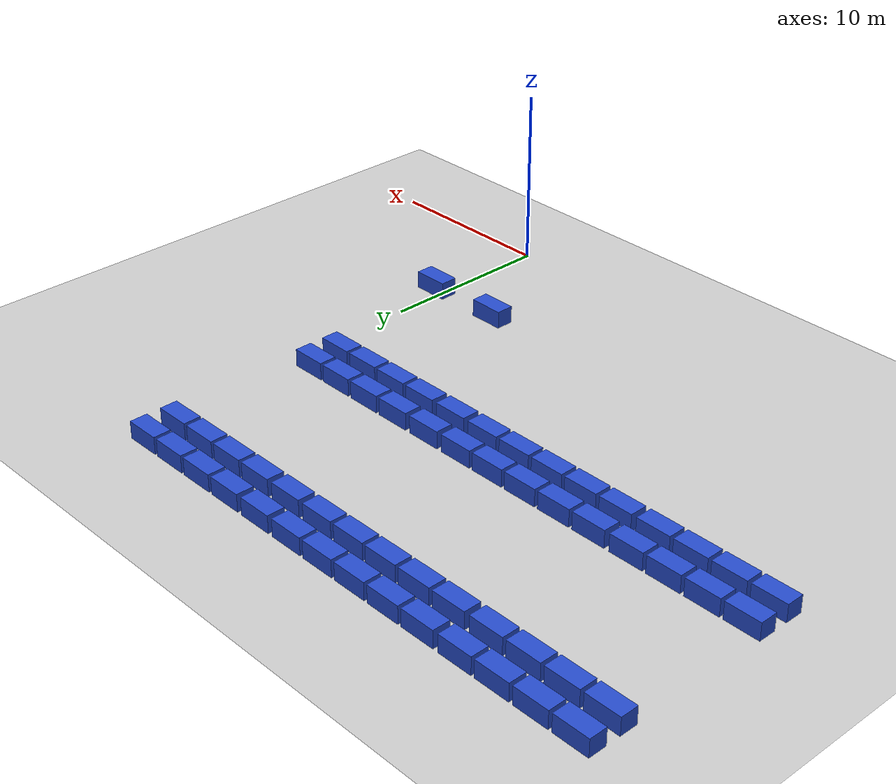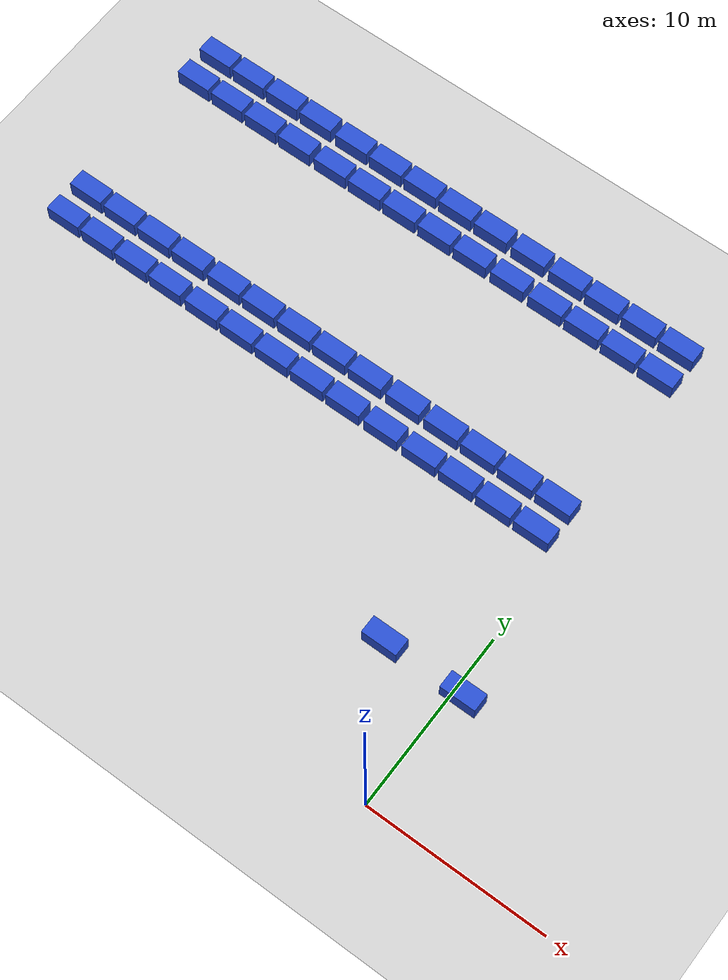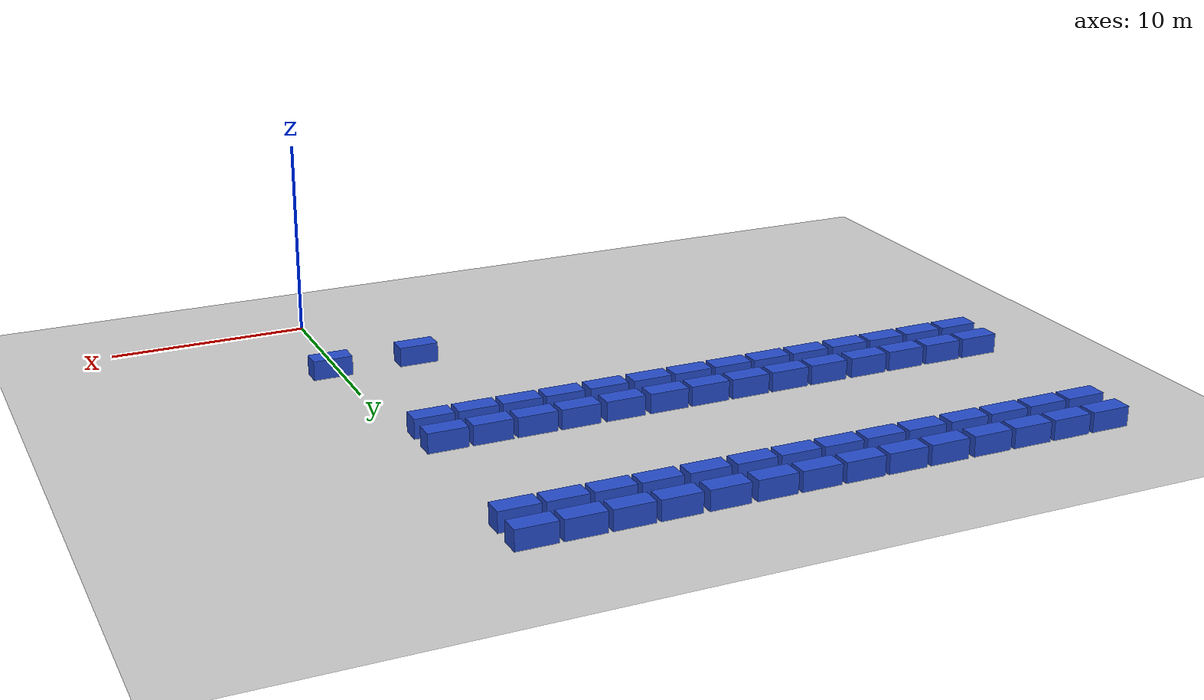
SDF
<sdf version="1.6">
 <world name="default">
  <model name="ground_plane">
   <static>1</static>
   <link name="link">
    <collision name="collision">
     <geometry><plane><normal>0 0 1</normal><size>100 100</size></plane></geometry>
     <surface><friction><ode><mu>100</mu><mu2>50</mu2></ode></friction></surface>
    </collision>
    <visual name="visual">
     <cast_shadows>0</cast_shadows>
     <geometry><plane><normal>0 0 1</normal><size>100 100</size></plane></geometry>
     <material>
      <script><uri>file://media/materials/scripts/gazebo.material</uri><name>Gazebo/Grey</name></script>
     </material>
    </visual>
   </link>
  </model>
  <model name="box0">
   <link name="blue_box">
    <inertial>
     <pose>2 0 0 0 -0 0</pose>
     <mass>1</mass>
     <inertia><ixx>0.17</ixx><ixy>0</ixy><ixz>0</ixz><iyy>0.42</iyy><iyz>0</iyz><izz>0.42</izz></inertia>
    </inertial>
    <collision name="blue_box_collision">
     <pose>2 0 1 0 -0 0</pose>
     <geometry><box><size>2 1 1</size></box></geometry>
    </collision>
    <visual name="blue_box_visual">
     <pose>2 0 1 0 -0 0</pose>
     <geometry><box><size>2 1 1</size></box></geometry>
     <material>
      <script><name>Gazebo/Blue</name><uri>file://media/materials/scripts/gazebo.material</uri></script>
     </material>
    </visual>
    <gravity>0</gravity>
   </link>
   <pose>-32.4 27.7996 -0.500378 -0.000755 0 0</pose>
  </model>
  <model name="box1">
   <link name="blue_box">
    <inertial>
     <pose>2 0 0 0 -0 0</pose>
     <mass>1</mass>
     <inertia><ixx>0.17</ixx><ixy>0</ixy><ixz>0</ixz><iyy>0.42</iyy><iyz>0</iyz><izz>0.42</izz></inertia>
    </inertial>
    <collision name="blue_box_collision">
     <pose>2 0 1 0 -0 0</pose>
     <geometry><box><size>2 1 1</size></box></geometry>
    </collision>
    <visual name="blue_box_visual">
     <pose>2 0 1 0 -0 0</pose>
     <geometry><box><size>2 1 1</size></box></geometry>
     <material>
      <script><name>Gazebo/Blue</name><uri>file://media/materials/scripts/gazebo.material</uri></script>
     </material>
    </visual>
    <gravity>0</gravity>
   </link>
   <pose>-30.2 27.7996 -0.500378 -0.000755 0 0</pose>
  </model>
  <model name="box2">
   <link name="blue_box">
    <inertial>
     <pose>2 0 0 0 -0 0</pose>
     <mass>1</mass>
     <inertia><ixx>0.17</ixx><ixy>0</ixy><ixz>0</ixz><iyy>0.42</iyy><iyz>0</iyz><izz>0.42</izz></inertia>
    </inertial>
    <collision name="blue_box_collision">
     <pose>2 0 1 0 -0 0</pose>
     <geometry><box><size>2 1 1</size></box></geometry>
    </collision>
    <visual name="blue_box_visual">
     <pose>2 0 1 0 -0 0</pose>
     <geometry><box><size>2 1 1</size></box></geometry>
     <material>
      <script><name>Gazebo/Blue</name><uri>file://media/materials/scripts/gazebo.material</uri></script>
     </material>
    </visual>
    <gravity>0</gravity>
   </link>
   <pose>-28 27.7996 -0.500378 -0.000755 0 0</pose>
  </model>
  <model name="box3">
   <link name="blue_box">
    <inertial>
     <pose>2 0 0 0 -0 0</pose>
     <mass>1</mass>
     <inertia><ixx>0.17</ixx><ixy>0</ixy><ixz>0</ixz><iyy>0.42</iyy><iyz>0</iyz><izz>0.42</izz></inertia>
    </inertial>
    <collision name="blue_box_collision">
     <pose>2 0 1 0 -0 0</pose>
     <geometry><box><size>2 1 1</size></box></geometry>
    </collision>
    <visual name="blue_box_visual">
     <pose>2 0 1 0 -0 0</pose>
     <geometry><box><size>2 1 1</size></box></geometry>
     <material>
      <script><name>Gazebo/Blue</name><uri>file://media/materials/scripts/gazebo.material</uri></script>
     </material>
    </visual>
    <gravity>0</gravity>
   </link>
   <pose>-25.8 27.7996 -0.500378 -0.000755 0 0</pose>
  </model>
  <model name="box4">
   <link name="blue_box">
    <inertial>
     <pose>2 0 0 0 -0 0</pose>
     <mass>1</mass>
     <inertia><ixx>0.17</ixx><ixy>0</ixy><ixz>0</ixz><iyy>0.42</iyy><iyz>0</iyz><izz>0.42</izz></inertia>
    </inertial>
    <collision name="blue_box_collision">
     <pose>2 0 1 0 -0 0</pose>
     <geometry><box><size>2 1 1</size></box></geometry>
    </collision>
    <visual name="blue_box_visual">
     <pose>2 0 1 0 -0 0</pose>
     <geometry><box><size>2 1 1</size></box></geometry>
     <material>
      <script><name>Gazebo/Blue</name><uri>file://media/materials/scripts/gazebo.material</uri></script>
     </material>
    </visual>
    <gravity>0</gravity>
   </link>
   <pose>-23.5 27.7996 -0.500378 -0.000755 0 0</pose>
  </model>
  <model name="box5">
   <link name="blue_box">
    <inertial>
     <pose>2 0 0 0 -0 0</pose>
     <mass>1</mass>
     <inertia><ixx>0.17</ixx><ixy>0</ixy><ixz>0</ixz><iyy>0.42</iyy><iyz>0</iyz><izz>0.42</izz></inertia>
    </inertial>
    <collision name="blue_box_collision">
     <pose>2 0 1 0 -0 0</pose>
     <geometry><box><size>2 1 1</size></box></geometry>
    </collision>
    <visual name="blue_box_visual">
     <pose>2 0 1 0 -0 0</pose>
     <geometry><box><size>2 1 1</size></box></geometry>
     <material>
      <script><name>Gazebo/Blue</name><uri>file://media/materials/scripts/gazebo.material</uri></script>
     </material>
    </visual>
    <gravity>0</gravity>
   </link>
   <pose>-21.3 27.7996 -0.500378 -0.000755 0 0</pose>
  </model>
  <model name="box6">
   <link name="blue_box">
    <inertial>
     <pose>2 0 0 0 -0 0</pose>
     <mass>1</mass>
     <inertia><ixx>0.17</ixx><ixy>0</ixy><ixz>0</ixz><iyy>0.42</iyy><iyz>0</iyz><izz>0.42</izz></inertia>
    </inertial>
    <collision name="blue_box_collision">
     <pose>2 0 1 0 -0 0</pose>
     <geometry><box><size>2 1 1</size></box></geometry>
    </collision>
    <visual name="blue_box_visual">
     <pose>2 0 1 0 -0 0</pose>
     <geometry><box><size>2 1 1</size></box></geometry>
     <material>
      <script><name>Gazebo/Blue</name><uri>file://media/materials/scripts/gazebo.material</uri></script>
     </material>
    </visual>
    <gravity>0</gravity>
   </link>
   <pose>-19.1 27.7996 -0.500378 -0.000755 0 0</pose>
  </model>
  <model name="box7">
   <link name="blue_box">
    <inertial>
     <pose>2 0 0 0 -0 0</pose>
     <mass>1</mass>
     <inertia><ixx>0.17</ixx><ixy>0</ixy><ixz>0</ixz><iyy>0.42</iyy><iyz>0</iyz><izz>0.42</izz></inertia>
    </inertial>
    <collision name="blue_box_collision">
     <pose>2 0 1 0 -0 0</pose>
     <geometry><box><size>2 1 1</size></box></geometry>
    </collision>
    <visual name="blue_box_visual">
     <pose>2 0 1 0 -0 0</pose>
     <geometry><box><size>2 1 1</size></box></geometry>
     <material>
      <script><name>Gazebo/Blue</name><uri>file://media/materials/scripts/gazebo.material</uri></script>
     </material>
    </visual>
    <gravity>0</gravity>
   </link>
   <pose>-16.9 27.7996 -0.500378 -0.000755 0 0</pose>
  </model>
  <model name="box8">
   <link name="blue_box">
    <inertial>
     <pose>2 0 0 0 -0 0</pose>
     <mass>1</mass>
     <inertia><ixx>0.17</ixx><ixy>0</ixy><ixz>0</ixz><iyy>0.42</iyy><iyz>0</iyz><izz>0.42</izz></inertia>
    </inertial>
    <collision name="blue_box_collision">
     <pose>2 0 1 0 -0 0</pose>
     <geometry><box><size>2 1 1</size></box></geometry>
    </collision>
    <visual name="blue_box_visual">
     <pose>2 0 1 0 -0 0</pose>
     <geometry><box><size>2 1 1</size></box></geometry>
     <material>
      <script><name>Gazebo/Blue</name><uri>file://media/materials/scripts/gazebo.material</uri></script>
     </material>
    </visual>
    <gravity>0</gravity>
   </link>
   <pose>-14.7 27.7996 -0.500378 -0.000755 0 0</pose>
  </model>
  <model name="box9">
   <link name="blue_box">
    <inertial>
     <pose>2 0 0 0 -0 0</pose>
     <mass>1</mass>
     <inertia><ixx>0.17</ixx><ixy>0</ixy><ixz>0</ixz><iyy>0.42</iyy><iyz>0</iyz><izz>0.42</izz></inertia>
    </inertial>
    <collision name="blue_box_collision">
     <pose>2 0 1 0 -0 0</pose>
     <geometry><box><size>2 1 1</size></box></geometry>
    </collision>
    <visual name="blue_box_visual">
     <pose>2 0 1 0 -0 0</pose>
     <geometry><box><size>2 1 1</size></box></geometry>
     <material>
      <script><name>Gazebo/Blue</name><uri>file://media/materials/scripts/gazebo.material</uri></script>
     </material>
    </visual>
    <gravity>0</gravity>
   </link>
   <pose>-12.4 27.7996 -0.500378 -0.000755 0 0</pose>
  </model>
  <model name="box10">
   <link name="blue_box">
    <inertial>
     <pose>2 0 0 0 -0 0</pose>
     <mass>1</mass>
     <inertia><ixx>0.17</ixx><ixy>0</ixy><ixz>0</ixz><iyy>0.42</iyy><iyz>0</iyz><izz>0.42</izz></inertia>
    </inertial>
    <collision name="blue_box_collision">
     <pose>2 0 1 0 -0 0</pose>
     <geometry><box><size>2 1 1</size></box></geometry>
    </collision>
    <visual name="blue_box_visual">
     <pose>2 0 1 0 -0 0</pose>
     <geometry><box><size>2 1 1</size></box></geometry>
     <material>
      <script><name>Gazebo/Blue</name><uri>file://media/materials/scripts/gazebo.material</uri></script>
     </material>
    </visual>
    <gravity>0</gravity>
   </link>
   <pose>-10.1 27.7996 -0.500378 -0.000755 0 0</pose>
  </model>
  <model name="box11">
   <link name="blue_box">
    <inertial>
     <pose>2 0 0 0 -0 0</pose>
     <mass>1</mass>
     <inertia><ixx>0.17</ixx><ixy>0</ixy><ixz>0</ixz><iyy>0.42</iyy><iyz>0</iyz><izz>0.42</izz></inertia>
    </inertial>
    <collision name="blue_box_collision">
     <pose>2 0 1 0 -0 0</pose>
     <geometry><box><size>2 1 1</size></box></geometry>
    </collision>
    <visual name="blue_box_visual">
     <pose>2 0 1 0 -0 0</pose>
     <geometry><box><size>2 1 1</size></box></geometry>
     <material>
      <script><name>Gazebo/Blue</name><uri>file://media/materials/scripts/gazebo.material</uri></script>
     </material>
    </visual>
    <gravity>0</gravity>
   </link>
   <pose>-7.89999 27.7996 -0.500378 -0.000755 0 0</pose>
  </model>
  <model name="box12">
   <link name="blue_box">
    <inertial>
     <pose>2 0 0 0 -0 0</pose>
     <mass>1</mass>
     <inertia><ixx>0.17</ixx><ixy>0</ixy><ixz>0</ixz><iyy>0.42</iyy><iyz>0</iyz><izz>0.42</izz></inertia>
    </inertial>
    <collision name="blue_box_collision">
     <pose>2 0 1 0 -0 0</pose>
     <geometry><box><size>2 1 1</size></box></geometry>
    </collision>
    <visual name="blue_box_visual">
     <pose>2 0 1 0 -0 0</pose>
     <geometry><box><size>2 1 1</size></box></geometry>
     <material>
      <script><name>Gazebo/Blue</name><uri>file://media/materials/scripts/gazebo.material</uri></script>
     </material>
    </visual>
    <gravity>0</gravity>
   </link>
   <pose>-5.70001 27.7996 -0.500378 -0.000755 0 0</pose>
  </model>
  <model name="box13">
   <link name="blue_box">
    <inertial>
     <pose>2 0 0 0 -0 0</pose>
     <mass>1</mass>
     <inertia><ixx>0.17</ixx><ixy>0</ixy><ixz>0</ixz><iyy>0.42</iyy><iyz>0</iyz><izz>0.42</izz></inertia>
    </inertial>
    <collision name="blue_box_collision">
     <pose>2 0 1 0 -0 0</pose>
     <geometry><box><size>2 1 1</size></box></geometry>
    </collision>
    <visual name="blue_box_visual">
     <pose>2 0 1 0 -0 0</pose>
     <geometry><box><size>2 1 1</size></box></geometry>
     <material>
      <script><name>Gazebo/Blue</name><uri>file://media/materials/scripts/gazebo.material</uri></script>
     </material>
    </visual>
    <gravity>0</gravity>
   </link>
   <pose>-3.49999 27.7996 -0.500378 -0.000755 0 0</pose>
  </model>
  <model name="box29">
   <link name="blue_box">
    <inertial>
     <pose>2 0 0 0 -0 0</pose>
     <mass>1</mass>
     <inertia><ixx>0.17</ixx><ixy>0</ixy><ixz>0</ixz><iyy>0.42</iyy><iyz>0</iyz><izz>0.42</izz></inertia>
    </inertial>
    <collision name="blue_box_collision">
     <pose>2 0 1 0 -0 0</pose>
     <geometry><box><size>2 1 1</size></box></geometry>
    </collision>
    <visual name="blue_box_visual">
     <pose>2 0 1 0 -0 0</pose>
     <geometry><box><size>2 1 1</size></box></geometry>
     <material>
      <script><name>Gazebo/Blue</name><uri>file://media/materials/scripts/gazebo.material</uri></script>
     </material>
    </visual>
    <gravity>0</gravity>
   </link>
   <pose>-32.4 25.9996 -0.500378 -0.000755 0 0</pose>
  </model>
  <model name="box30">
   <link name="blue_box">
    <inertial>
     <pose>2 0 0 0 -0 0</pose>
     <mass>1</mass>
     <inertia><ixx>0.17</ixx><ixy>0</ixy><ixz>0</ixz><iyy>0.42</iyy><iyz>0</iyz><izz>0.42</izz></inertia>
    </inertial>
    <collision name="blue_box_collision">
     <pose>2 0 1 0 -0 0</pose>
     <geometry><box><size>2 1 1</size></box></geometry>
    </collision>
    <visual name="blue_box_visual">
     <pose>2 0 1 0 -0 0</pose>
     <geometry><box><size>2 1 1</size></box></geometry>
     <material>
      <script><name>Gazebo/Blue</name><uri>file://media/materials/scripts/gazebo.material</uri></script>
     </material>
    </visual>
    <gravity>0</gravity>
   </link>
   <pose>-30.2 26.0004 -0.500378 0.000755 -0 0</pose>
  </model>
  <model name="box31">
   <link name="blue_box">
    <inertial>
     <pose>2 0 0 0 -0 0</pose>
     <mass>1</mass>
     <inertia><ixx>0.17</ixx><ixy>0</ixy><ixz>0</ixz><iyy>0.42</iyy><iyz>0</iyz><izz>0.42</izz></inertia>
    </inertial>
    <collision name="blue_box_collision">
     <pose>2 0 1 0 -0 0</pose>
     <geometry><box><size>2 1 1</size></box></geometry>
    </collision>
    <visual name="blue_box_visual">
     <pose>2 0 1 0 -0 0</pose>
     <geometry><box><size>2 1 1</size></box></geometry>
     <material>
      <script><name>Gazebo/Blue</name><uri>file://media/materials/scripts/gazebo.material</uri></script>
     </material>
    </visual>
    <gravity>0</gravity>
   </link>
   <pose>-28 25.9996 -0.500378 -0.000755 0 0</pose>
  </model>
  <model name="box32">
   <link name="blue_box">
    <inertial>
     <pose>2 0 0 0 -0 0</pose>
     <mass>1</mass>
     <inertia><ixx>0.17</ixx><ixy>0</ixy><ixz>0</ixz><iyy>0.42</iyy><iyz>0</iyz><izz>0.42</izz></inertia>
    </inertial>
    <collision name="blue_box_collision">
     <pose>2 0 1 0 -0 0</pose>
     <geometry><box><size>2 1 1</size></box></geometry>
    </collision>
    <visual name="blue_box_visual">
     <pose>2 0 1 0 -0 0</pose>
     <geometry><box><size>2 1 1</size></box></geometry>
     <material>
      <script><name>Gazebo/Blue</name><uri>file://media/materials/scripts/gazebo.material</uri></script>
     </material>
    </visual>
    <gravity>0</gravity>
   </link>
   <pose>-25.8 25.9996 -0.500378 -0.000755 0 0</pose>
  </model>
  <model name="box33">
   <link name="blue_box">
    <inertial>
     <pose>2 0 0 0 -0 0</pose>
     <mass>1</mass>
     <inertia><ixx>0.17</ixx><ixy>0</ixy><ixz>0</ixz><iyy>0.42</iyy><iyz>0</iyz><izz>0.42</izz></inertia>
    </inertial>
    <collision name="blue_box_collision">
     <pose>2 0 1 0 -0 0</pose>
     <geometry><box><size>2 1 1</size></box></geometry>
    </collision>
    <visual name="blue_box_visual">
     <pose>2 0 1 0 -0 0</pose>
     <geometry><box><size>2 1 1</size></box></geometry>
     <material>
      <script><name>Gazebo/Blue</name><uri>file://media/materials/scripts/gazebo.material</uri></script>
     </material>
    </visual>
    <gravity>0</gravity>
   </link>
   <pose>-23.5 26.0004 -0.500378 0.000755 -0 0</pose>
  </model>
  <model name="box34">
   <link name="blue_box">
    <inertial>
     <pose>2 0 0 0 -0 0</pose>
     <mass>1</mass>
     <inertia><ixx>0.17</ixx><ixy>0</ixy><ixz>0</ixz><iyy>0.42</iyy><iyz>0</iyz><izz>0.42</izz></inertia>
    </inertial>
    <collision name="blue_box_collision">
     <pose>2 0 1 0 -0 0</pose>
     <geometry><box><size>2 1 1</size></box></geometry>
    </collision>
    <visual name="blue_box_visual">
     <pose>2 0 1 0 -0 0</pose>
     <geometry><box><size>2 1 1</size></box></geometry>
     <material>
      <script><name>Gazebo/Blue</name><uri>file://media/materials/scripts/gazebo.material</uri></script>
     </material>
    </visual>
    <gravity>0</gravity>
   </link>
   <pose>-21.3 26.0004 -0.500378 0.000755 -0 0</pose>
  </model>
  <model name="box35">
   <link name="blue_box">
    <inertial>
     <pose>2 0 0 0 -0 0</pose>
     <mass>1</mass>
     <inertia><ixx>0.17</ixx><ixy>0</ixy><ixz>0</ixz><iyy>0.42</iyy><iyz>0</iyz><izz>0.42</izz></inertia>
    </inertial>
    <collision name="blue_box_collision">
     <pose>2 0 1 0 -0 0</pose>
     <geometry><box><size>2 1 1</size></box></geometry>
    </collision>
    <visual name="blue_box_visual">
     <pose>2 0 1 0 -0 0</pose>
     <geometry><box><size>2 1 1</size></box></geometry>
     <material>
      <script><name>Gazebo/Blue</name><uri>file://media/materials/scripts/gazebo.material</uri></script>
     </material>
    </visual>
    <gravity>0</gravity>
   </link>
   <pose>-19.1 25.9996 -0.500378 -0.000755 0 0</pose>
  </model>
  <model name="box36">
   <link name="blue_box">
    <inertial>
     <pose>2 0 0 0 -0 0</pose>
     <mass>1</mass>
     <inertia><ixx>0.17</ixx><ixy>0</ixy><ixz>0</ixz><iyy>0.42</iyy><iyz>0</iyz><izz>0.42</izz></inertia>
    </inertial>
    <collision name="blue_box_collision">
     <pose>2 0 1 0 -0 0</pose>
     <geometry><box><size>2 1 1</size></box></geometry>
    </collision>
    <visual name="blue_box_visual">
     <pose>2 0 1 0 -0 0</pose>
     <geometry><box><size>2 1 1</size></box></geometry>
     <material>
      <script><name>Gazebo/Blue</name><uri>file://media/materials/scripts/gazebo.material</uri></script>
     </material>
    </visual>
    <gravity>0</gravity>
   </link>
   <pose>-16.9 25.9996 -0.500378 -0.000755 0 0</pose>
  </model>
  <model name="box37">
   <link name="blue_box">
    <inertial>
     <pose>2 0 0 0 -0 0</pose>
     <mass>1</mass>
     <inertia><ixx>0.17</ixx><ixy>0</ixy><ixz>0</ixz><iyy>0.42</iyy><iyz>0</iyz><izz>0.42</izz></inertia>
    </inertial>
    <collision name="blue_box_collision">
     <pose>2 0 1 0 -0 0</pose>
     <geometry><box><size>2 1 1</size></box></geometry>
    </collision>
    <visual name="blue_box_visual">
     <pose>2 0 1 0 -0 0</pose>
     <geometry><box><size>2 1 1</size></box></geometry>
     <material>
      <script><name>Gazebo/Blue</name><uri>file://media/materials/scripts/gazebo.material</uri></script>
     </material>
    </visual>
    <gravity>0</gravity>
   </link>
   <pose>-14.7 25.9996 -0.500378 -0.000755 0 0</pose>
  </model>
  <model name="box38">
   <link name="blue_box">
    <inertial>
     <pose>2 0 0 0 -0 0</pose>
     <mass>1</mass>
     <inertia><ixx>0.17</ixx><ixy>0</ixy><ixz>0</ixz><iyy>0.42</iyy><iyz>0</iyz><izz>0.42</izz></inertia>
    </inertial>
    <collision name="blue_box_collision">
     <pose>2 0 1 0 -0 0</pose>
     <geometry><box><size>2 1 1</size></box></geometry>
    </collision>
    <visual name="blue_box_visual">
     <pose>2 0 1 0 -0 0</pose>
     <geometry><box><size>2 1 1</size></box></geometry>
     <material>
      <script><name>Gazebo/Blue</name><uri>file://media/materials/scripts/gazebo.material</uri></script>
     </material>
    </visual>
    <gravity>0</gravity>
   </link>
   <pose>-12.4 25.9996 -0.500378 -0.000755 0 0</pose>
  </model>
  <model name="box39">
   <link name="blue_box">
    <inertial>
     <pose>2 0 0 0 -0 0</pose>
     <mass>1</mass>
     <inertia><ixx>0.17</ixx><ixy>0</ixy><ixz>0</ixz><iyy>0.42</iyy><iyz>0</iyz><izz>0.42</izz></inertia>
    </inertial>
    <collision name="blue_box_collision">
     <pose>2 0 1 0 -0 0</pose>
     <geometry><box><size>2 1 1</size></box></geometry>
    </collision>
    <visual name="blue_box_visual">
     <pose>2 0 1 0 -0 0</pose>
     <geometry><box><size>2 1 1</size></box></geometry>
     <material>
      <script><name>Gazebo/Blue</name><uri>file://media/materials/scripts/gazebo.material</uri></script>
     </material>
    </visual>
    <gravity>0</gravity>
   </link>
   <pose>-10.1 25.9996 -0.500378 -0.000755 0 0</pose>
  </model>
  <model name="box40">
   <link name="blue_box">
    <inertial>
     <pose>2 0 0 0 -0 0</pose>
     <mass>1</mass>
     <inertia><ixx>0.17</ixx><ixy>0</ixy><ixz>0</ixz><iyy>0.42</iyy><iyz>0</iyz><izz>0.42</izz></inertia>
    </inertial>
    <collision name="blue_box_collision">
     <pose>2 0 1 0 -0 0</pose>
     <geometry><box><size>2 1 1</size></box></geometry>
    </collision>
    <visual name="blue_box_visual">
     <pose>2 0 1 0 -0 0</pose>
     <geometry><box><size>2 1 1</size></box></geometry>
     <material>
      <script><name>Gazebo/Blue</name><uri>file://media/materials/scripts/gazebo.material</uri></script>
     </material>
    </visual>
    <gravity>0</gravity>
   </link>
   <pose>-7.90001 25.9996 -0.500378 -0.000755 0 0</pose>
  </model>
  <model name="box41">
   <link name="blue_box">
    <inertial>
     <pose>2 0 0 0 -0 0</pose>
     <mass>1</mass>
     <inertia><ixx>0.17</ixx><ixy>0</ixy><ixz>0</ixz><iyy>0.42</iyy><iyz>0</iyz><izz>0.42</izz></inertia>
    </inertial>
    <collision name="blue_box_collision">
     <pose>2 0 1 0 -0 0</pose>
     <geometry><box><size>2 1 1</size></box></geometry>
    </collision>
    <visual name="blue_box_visual">
     <pose>2 0 1 0 -0 0</pose>
     <geometry><box><size>2 1 1</size></box></geometry>
     <material>
      <script><name>Gazebo/Blue</name><uri>file://media/materials/scripts/gazebo.material</uri></script>
     </material>
    </visual>
    <gravity>0</gravity>
   </link>
   <pose>-5.69999 25.9996 -0.500378 -0.000755 0 0</pose>
  </model>
  <model name="box42">
   <link name="blue_box">
    <inertial>
     <pose>2 0 0 0 -0 0</pose>
     <mass>1</mass>
     <inertia><ixx>0.17</ixx><ixy>0</ixy><ixz>0</ixz><iyy>0.42</iyy><iyz>0</iyz><izz>0.42</izz></inertia>
    </inertial>
    <collision name="blue_box_collision">
     <pose>2 0 1 0 -0 0</pose>
     <geometry><box><size>2 1 1</size></box></geometry>
    </collision>
    <visual name="blue_box_visual">
     <pose>2 0 1 0 -0 0</pose>
     <geometry><box><size>2 1 1</size></box></geometry>
     <material>
      <script><name>Gazebo/Blue</name><uri>file://media/materials/scripts/gazebo.material</uri></script>
     </material>
    </visual>
    <gravity>0</gravity>
   </link>
   <pose>-3.50001 25.9996 -0.500378 -0.000755 0 0</pose>
  </model>
  <model name="box58">
   <link name="blue_box">
    <inertial>
     <pose>2 0 0 0 -0 0</pose>
     <mass>1</mass>
     <inertia><ixx>0.17</ixx><ixy>0</ixy><ixz>0</ixz><iyy>0.42</iyy><iyz>0</iyz><izz>0.42</izz></inertia>
    </inertial>
    <collision name="blue_box_collision">
     <pose>2 0 1 0 -0 0</pose>
     <geometry><box><size>2 1 1</size></box></geometry>
    </collision>
    <visual name="blue_box_visual">
     <pose>2 0 1 0 -0 0</pose>
     <geometry><box><size>2 1 1</size></box></geometry>
     <material>
      <script><name>Gazebo/Blue</name><uri>file://media/materials/scripts/gazebo.material</uri></script>
     </material>
    </visual>
    <gravity>0</gravity>
   </link>
   <pose>-32.5 17.3996 -0.500378 -0.000755 0 0</pose>
  </model>
  <model name="box59">
   <link name="blue_box">
    <inertial>
     <pose>2 0 0 0 -0 0</pose>
     <mass>1</mass>
     <inertia><ixx>0.17</ixx><ixy>0</ixy><ixz>0</ixz><iyy>0.42</iyy><iyz>0</iyz><izz>0.42</izz></inertia>
    </inertial>
    <collision name="blue_box_collision">
     <pose>2 0 1 0 -0 0</pose>
     <geometry><box><size>2 1 1</size></box></geometry>
    </collision>
    <visual name="blue_box_visual">
     <pose>2 0 1 0 -0 0</pose>
     <geometry><box><size>2 1 1</size></box></geometry>
     <material>
      <script><name>Gazebo/Blue</name><uri>file://media/materials/scripts/gazebo.material</uri></script>
     </material>
    </visual>
    <gravity>0</gravity>
   </link>
   <pose>-30.3 17.4004 -0.500378 0.000755 -0 0</pose>
  </model>
  <model name="box60">
   <link name="blue_box">
    <inertial>
     <pose>2 0 0 0 -0 0</pose>
     <mass>1</mass>
     <inertia><ixx>0.17</ixx><ixy>0</ixy><ixz>0</ixz><iyy>0.42</iyy><iyz>0</iyz><izz>0.42</izz></inertia>
    </inertial>
    <collision name="blue_box_collision">
     <pose>2 0 1 0 -0 0</pose>
     <geometry><box><size>2 1 1</size></box></geometry>
    </collision>
    <visual name="blue_box_visual">
     <pose>2 0 1 0 -0 0</pose>
     <geometry><box><size>2 1 1</size></box></geometry>
     <material>
      <script><name>Gazebo/Blue</name><uri>file://media/materials/scripts/gazebo.material</uri></script>
     </material>
    </visual>
    <gravity>0</gravity>
   </link>
   <pose>-28.1 17.4004 -0.500378 0.000755 -0 0</pose>
  </model>
  <model name="box61">
   <link name="blue_box">
    <inertial>
     <pose>2 0 0 0 -0 0</pose>
     <mass>1</mass>
     <inertia><ixx>0.17</ixx><ixy>0</ixy><ixz>0</ixz><iyy>0.42</iyy><iyz>0</iyz><izz>0.42</izz></inertia>
    </inertial>
    <collision name="blue_box_collision">
     <pose>2 0 1 0 -0 0</pose>
     <geometry><box><size>2 1 1</size></box></geometry>
    </collision>
    <visual name="blue_box_visual">
     <pose>2 0 1 0 -0 0</pose>
     <geometry><box><size>2 1 1</size></box></geometry>
     <material>
      <script><name>Gazebo/Blue</name><uri>file://media/materials/scripts/gazebo.material</uri></script>
     </material>
    </visual>
    <gravity>0</gravity>
   </link>
   <pose>-25.9 17.3996 -0.500378 -0.000755 0 0</pose>
  </model>
  <model name="box62">
   <link name="blue_box">
    <inertial>
     <pose>2 0 0 0 -0 0</pose>
     <mass>1</mass>
     <inertia><ixx>0.17</ixx><ixy>0</ixy><ixz>0</ixz><iyy>0.42</iyy><iyz>0</iyz><izz>0.42</izz></inertia>
    </inertial>
    <collision name="blue_box_collision">
     <pose>2 0 1 0 -0 0</pose>
     <geometry><box><size>2 1 1</size></box></geometry>
    </collision>
    <visual name="blue_box_visual">
     <pose>2 0 1 0 -0 0</pose>
     <geometry><box><size>2 1 1</size></box></geometry>
     <material>
      <script><name>Gazebo/Blue</name><uri>file://media/materials/scripts/gazebo.material</uri></script>
     </material>
    </visual>
    <gravity>0</gravity>
   </link>
   <pose>-23.6 17.3996 -0.500378 -0.000755 0 0</pose>
  </model>
  <model name="box63">
   <link name="blue_box">
    <inertial>
     <pose>2 0 0 0 -0 0</pose>
     <mass>1</mass>
     <inertia><ixx>0.17</ixx><ixy>0</ixy><ixz>0</ixz><iyy>0.42</iyy><iyz>0</iyz><izz>0.42</izz></inertia>
    </inertial>
    <collision name="blue_box_collision">
     <pose>2 0 1 0 -0 0</pose>
     <geometry><box><size>2 1 1</size></box></geometry>
    </collision>
    <visual name="blue_box_visual">
     <pose>2 0 1 0 -0 0</pose>
     <geometry><box><size>2 1 1</size></box></geometry>
     <material>
      <script><name>Gazebo/Blue</name><uri>file://media/materials/scripts/gazebo.material</uri></script>
     </material>
    </visual>
    <gravity>0</gravity>
   </link>
   <pose>-21.4 17.4004 -0.500378 0.000755 -0 0</pose>
  </model>
  <model name="box64">
   <link name="blue_box">
    <inertial>
     <pose>2 0 0 0 -0 0</pose>
     <mass>1</mass>
     <inertia><ixx>0.17</ixx><ixy>0</ixy><ixz>0</ixz><iyy>0.42</iyy><iyz>0</iyz><izz>0.42</izz></inertia>
    </inertial>
    <collision name="blue_box_collision">
     <pose>2 0 1 0 -0 0</pose>
     <geometry><box><size>2 1 1</size></box></geometry>
    </collision>
    <visual name="blue_box_visual">
     <pose>2 0 1 0 -0 0</pose>
     <geometry><box><size>2 1 1</size></box></geometry>
     <material>
      <script><name>Gazebo/Blue</name><uri>file://media/materials/scripts/gazebo.material</uri></script>
     </material>
    </visual>
    <gravity>0</gravity>
   </link>
   <pose>-19.2 17.3996 -0.500378 -0.000755 0 0</pose>
  </model>
  <model name="box65">
   <link name="blue_box">
    <inertial>
     <pose>2 0 0 0 -0 0</pose>
     <mass>1</mass>
     <inertia><ixx>0.17</ixx><ixy>0</ixy><ixz>0</ixz><iyy>0.42</iyy><iyz>0</iyz><izz>0.42</izz></inertia>
    </inertial>
    <collision name="blue_box_collision">
     <pose>2 0 1 0 -0 0</pose>
     <geometry><box><size>2 1 1</size></box></geometry>
    </collision>
    <visual name="blue_box_visual">
     <pose>2 0 1 0 -0 0</pose>
     <geometry><box><size>2 1 1</size></box></geometry>
     <material>
      <script><name>Gazebo/Blue</name><uri>file://media/materials/scripts/gazebo.material</uri></script>
     </material>
    </visual>
    <gravity>0</gravity>
   </link>
   <pose>-17 17.4004 -0.500378 0.000755 -0 0</pose>
  </model>
  <model name="box66">
   <link name="blue_box">
    <inertial>
     <pose>2 0 0 0 -0 0</pose>
     <mass>1</mass>
     <inertia><ixx>0.17</ixx><ixy>0</ixy><ixz>0</ixz><iyy>0.42</iyy><iyz>0</iyz><izz>0.42</izz></inertia>
    </inertial>
    <collision name="blue_box_collision">
     <pose>2 0 1 0 -0 0</pose>
     <geometry><box><size>2 1 1</size></box></geometry>
    </collision>
    <visual name="blue_box_visual">
     <pose>2 0 1 0 -0 0</pose>
     <geometry><box><size>2 1 1</size></box></geometry>
     <material>
      <script><name>Gazebo/Blue</name><uri>file://media/materials/scripts/gazebo.material</uri></script>
     </material>
    </visual>
    <gravity>0</gravity>
   </link>
   <pose>-14.8 17.4004 -0.500378 0.000755 -0 0</pose>
  </model>
  <model name="box67">
   <link name="blue_box">
    <inertial>
     <pose>2 0 0 0 -0 0</pose>
     <mass>1</mass>
     <inertia><ixx>0.17</ixx><ixy>0</ixy><ixz>0</ixz><iyy>0.42</iyy><iyz>0</iyz><izz>0.42</izz></inertia>
    </inertial>
    <collision name="blue_box_collision">
     <pose>2 0 1 0 -0 0</pose>
     <geometry><box><size>2 1 1</size></box></geometry>
    </collision>
    <visual name="blue_box_visual">
     <pose>2 0 1 0 -0 0</pose>
     <geometry><box><size>2 1 1</size></box></geometry>
     <material>
      <script><name>Gazebo/Blue</name><uri>file://media/materials/scripts/gazebo.material</uri></script>
     </material>
    </visual>
    <gravity>0</gravity>
   </link>
   <pose>-12.5 17.4004 -0.500378 0.000755 -0 0</pose>
  </model>
  <model name="box68">
   <link name="blue_box">
    <inertial>
     <pose>2 0 0 0 -0 0</pose>
     <mass>1</mass>
     <inertia><ixx>0.17</ixx><ixy>0</ixy><ixz>0</ixz><iyy>0.42</iyy><iyz>0</iyz><izz>0.42</izz></inertia>
    </inertial>
    <collision name="blue_box_collision">
     <pose>2 0 1 0 -0 0</pose>
     <geometry><box><size>2 1 1</size></box></geometry>
    </collision>
    <visual name="blue_box_visual">
     <pose>2 0 1 0 -0 0</pose>
     <geometry><box><size>2 1 1</size></box></geometry>
     <material>
      <script><name>Gazebo/Blue</name><uri>file://media/materials/scripts/gazebo.material</uri></script>
     </material>
    </visual>
    <gravity>0</gravity>
   </link>
   <pose>-10.2 17.3996 -0.500378 -0.000755 0 0</pose>
  </model>
  <model name="box69">
   <link name="blue_box">
    <inertial>
     <pose>2 0 0 0 -0 0</pose>
     <mass>1</mass>
     <inertia><ixx>0.17</ixx><ixy>0</ixy><ixz>0</ixz><iyy>0.42</iyy><iyz>0</iyz><izz>0.42</izz></inertia>
    </inertial>
    <collision name="blue_box_collision">
     <pose>2 0 1 0 -0 0</pose>
     <geometry><box><size>2 1 1</size></box></geometry>
    </collision>
    <visual name="blue_box_visual">
     <pose>2 0 1 0 -0 0</pose>
     <geometry><box><size>2 1 1</size></box></geometry>
     <material>
      <script><name>Gazebo/Blue</name><uri>file://media/materials/scripts/gazebo.material</uri></script>
     </material>
    </visual>
    <gravity>0</gravity>
   </link>
   <pose>-8 17.4004 -0.500378 0.000755 -0 0</pose>
  </model>
  <model name="box70">
   <link name="blue_box">
    <inertial>
     <pose>2 0 0 0 -0 0</pose>
     <mass>1</mass>
     <inertia><ixx>0.17</ixx><ixy>0</ixy><ixz>0</ixz><iyy>0.42</iyy><iyz>0</iyz><izz>0.42</izz></inertia>
    </inertial>
    <collision name="blue_box_collision">
     <pose>2 0 1 0 -0 0</pose>
     <geometry><box><size>2 1 1</size></box></geometry>
    </collision>
    <visual name="blue_box_visual">
     <pose>2 0 1 0 -0 0</pose>
     <geometry><box><size>2 1 1</size></box></geometry>
     <material>
      <script><name>Gazebo/Blue</name><uri>file://media/materials/scripts/gazebo.material</uri></script>
     </material>
    </visual>
    <gravity>0</gravity>
   </link>
   <pose>-5.8 17.4004 -0.500378 0.000755 -0 0</pose>
  </model>
  <model name="box71">
   <link name="blue_box">
    <inertial>
     <pose>2 0 0 0 -0 0</pose>
     <mass>1</mass>
     <inertia><ixx>0.17</ixx><ixy>0</ixy><ixz>0</ixz><iyy>0.42</iyy><iyz>0</iyz><izz>0.42</izz></inertia>
    </inertial>
    <collision name="blue_box_collision">
     <pose>2 0 1 0 -0 0</pose>
     <geometry><box><size>2 1 1</size></box></geometry>
    </collision>
    <visual name="blue_box_visual">
     <pose>2 0 1 0 -0 0</pose>
     <geometry><box><size>2 1 1</size></box></geometry>
     <material>
      <script><name>Gazebo/Blue</name><uri>file://media/materials/scripts/gazebo.material</uri></script>
     </material>
    </visual>
    <gravity>0</gravity>
   </link>
   <pose>-3.59999 17.4004 -0.500378 0.000755 -0 0</pose>
  </model>
  <model name="box87">
   <link name="blue_box">
    <inertial>
     <pose>2 0 0 0 -0 0</pose>
     <mass>1</mass>
     <inertia><ixx>0.17</ixx><ixy>0</ixy><ixz>0</ixz><iyy>0.42</iyy><iyz>0</iyz><izz>0.42</izz></inertia>
    </inertial>
    <collision name="blue_box_collision">
     <pose>2 0 1 0 -0 0</pose>
     <geometry><box><size>2 1 1</size></box></geometry>
    </collision>
    <visual name="blue_box_visual">
     <pose>2 0 1 0 -0 0</pose>
     <geometry><box><size>2 1 1</size></box></geometry>
     <material>
      <script><name>Gazebo/Blue</name><uri>file://media/materials/scripts/gazebo.material</uri></script>
     </material>
    </visual>
    <gravity>0</gravity>
   </link>
   <pose>-32.5 15.5996 -0.500378 -0.000755 0 0</pose>
  </model>
  <model name="box88">
   <link name="blue_box">
    <inertial>
     <pose>2 0 0 0 -0 0</pose>
     <mass>1</mass>
     <inertia><ixx>0.17</ixx><ixy>0</ixy><ixz>0</ixz><iyy>0.42</iyy><iyz>0</iyz><izz>0.42</izz></inertia>
    </inertial>
    <collision name="blue_box_collision">
     <pose>2 0 1 0 -0 0</pose>
     <geometry><box><size>2 1 1</size></box></geometry>
    </collision>
    <visual name="blue_box_visual">
     <pose>2 0 1 0 -0 0</pose>
     <geometry><box><size>2 1 1</size></box></geometry>
     <material>
      <script><name>Gazebo/Blue</name><uri>file://media/materials/scripts/gazebo.material</uri></script>
     </material>
    </visual>
    <gravity>0</gravity>
   </link>
   <pose>-30.3 15.5996 -0.500378 -0.000755 0 0</pose>
  </model>
  <model name="box89">
   <link name="blue_box">
    <inertial>
     <pose>2 0 0 0 -0 0</pose>
     <mass>1</mass>
     <inertia><ixx>0.17</ixx><ixy>0</ixy><ixz>0</ixz><iyy>0.42</iyy><iyz>0</iyz><izz>0.42</izz></inertia>
    </inertial>
    <collision name="blue_box_collision">
     <pose>2 0 1 0 -0 0</pose>
     <geometry><box><size>2 1 1</size></box></geometry>
    </collision>
    <visual name="blue_box_visual">
     <pose>2 0 1 0 -0 0</pose>
     <geometry><box><size>2 1 1</size></box></geometry>
     <material>
      <script><name>Gazebo/Blue</name><uri>file://media/materials/scripts/gazebo.material</uri></script>
     </material>
    </visual>
    <gravity>0</gravity>
   </link>
   <pose>-28.1 15.6004 -0.500378 0.000755 -0 0</pose>
  </model>
  <model name="box90">
   <link name="blue_box">
    <inertial>
     <pose>2 0 0 0 -0 0</pose>
     <mass>1</mass>
     <inertia><ixx>0.17</ixx><ixy>0</ixy><ixz>0</ixz><iyy>0.42</iyy><iyz>0</iyz><izz>0.42</izz></inertia>
    </inertial>
    <collision name="blue_box_collision">
     <pose>2 0 1 0 -0 0</pose>
     <geometry><box><size>2 1 1</size></box></geometry>
    </collision>
    <visual name="blue_box_visual">
     <pose>2 0 1 0 -0 0</pose>
     <geometry><box><size>2 1 1</size></box></geometry>
     <material>
      <script><name>Gazebo/Blue</name><uri>file://media/materials/scripts/gazebo.material</uri></script>
     </material>
    </visual>
    <gravity>0</gravity>
   </link>
   <pose>-25.9 15.6004 -0.500378 0.000755 -0 0</pose>
  </model>
  <model name="box91">
   <link name="blue_box">
    <inertial>
     <pose>2 0 0 0 -0 0</pose>
     <mass>1</mass>
     <inertia><ixx>0.17</ixx><ixy>0</ixy><ixz>0</ixz><iyy>0.42</iyy><iyz>0</iyz><izz>0.42</izz></inertia>
    </inertial>
    <collision name="blue_box_collision">
     <pose>2 0 1 0 -0 0</pose>
     <geometry><box><size>2 1 1</size></box></geometry>
    </collision>
    <visual name="blue_box_visual">
     <pose>2 0 1 0 -0 0</pose>
     <geometry><box><size>2 1 1</size></box></geometry>
     <material>
      <script><name>Gazebo/Blue</name><uri>file://media/materials/scripts/gazebo.material</uri></script>
     </material>
    </visual>
    <gravity>0</gravity>
   </link>
   <pose>-23.6 15.6004 -0.500378 0.000755 -0 0</pose>
  </model>
  <model name="box92">
   <link name="blue_box">
    <inertial>
     <pose>2 0 0 0 -0 0</pose>
     <mass>1</mass>
     <inertia><ixx>0.17</ixx><ixy>0</ixy><ixz>0</ixz><iyy>0.42</iyy><iyz>0</iyz><izz>0.42</izz></inertia>
    </inertial>
    <collision name="blue_box_collision">
     <pose>2 0 1 0 -0 0</pose>
     <geometry><box><size>2 1 1</size></box></geometry>
    </collision>
    <visual name="blue_box_visual">
     <pose>2 0 1 0 -0 0</pose>
     <geometry><box><size>2 1 1</size></box></geometry>
     <material>
      <script><name>Gazebo/Blue</name><uri>file://media/materials/scripts/gazebo.material</uri></script>
     </material>
    </visual>
    <gravity>0</gravity>
   </link>
   <pose>-21.4 15.5996 -0.500378 -0.000755 0 0</pose>
  </model>
  <model name="box93">
   <link name="blue_box">
    <inertial>
     <pose>2 0 0 0 -0 0</pose>
     <mass>1</mass>
     <inertia><ixx>0.17</ixx><ixy>0</ixy><ixz>0</ixz><iyy>0.42</iyy><iyz>0</iyz><izz>0.42</izz></inertia>
    </inertial>
    <collision name="blue_box_collision">
     <pose>2 0 1 0 -0 0</pose>
     <geometry><box><size>2 1 1</size></box></geometry>
    </collision>
    <visual name="blue_box_visual">
     <pose>2 0 1 0 -0 0</pose>
     <geometry><box><size>2 1 1</size></box></geometry>
     <material>
      <script><name>Gazebo/Blue</name><uri>file://media/materials/scripts/gazebo.material</uri></script>
     </material>
    </visual>
    <gravity>0</gravity>
   </link>
   <pose>-19.2 15.5996 -0.500378 -0.000755 0 0</pose>
  </model>
  <model name="box94">
   <link name="blue_box">
    <inertial>
     <pose>2 0 0 0 -0 0</pose>
     <mass>1</mass>
     <inertia><ixx>0.17</ixx><ixy>0</ixy><ixz>0</ixz><iyy>0.42</iyy><iyz>0</iyz><izz>0.42</izz></inertia>
    </inertial>
    <collision name="blue_box_collision">
     <pose>2 0 1 0 -0 0</pose>
     <geometry><box><size>2 1 1</size></box></geometry>
    </collision>
    <visual name="blue_box_visual">
     <pose>2 0 1 0 -0 0</pose>
     <geometry><box><size>2 1 1</size></box></geometry>
     <material>
      <script><name>Gazebo/Blue</name><uri>file://media/materials/scripts/gazebo.material</uri></script>
     </material>
    </visual>
    <gravity>0</gravity>
   </link>
   <pose>-17 15.6004 -0.500378 0.000755 -0 0</pose>
  </model>
  <model name="box95">
   <link name="blue_box">
    <inertial>
     <pose>2 0 0 0 -0 0</pose>
     <mass>1</mass>
     <inertia><ixx>0.17</ixx><ixy>0</ixy><ixz>0</ixz><iyy>0.42</iyy><iyz>0</iyz><izz>0.42</izz></inertia>
    </inertial>
    <collision name="blue_box_collision">
     <pose>2 0 1 0 -0 0</pose>
     <geometry><box><size>2 1 1</size></box></geometry>
    </collision>
    <visual name="blue_box_visual">
     <pose>2 0 1 0 -0 0</pose>
     <geometry><box><size>2 1 1</size></box></geometry>
     <material>
      <script><name>Gazebo/Blue</name><uri>file://media/materials/scripts/gazebo.material</uri></script>
     </material>
    </visual>
    <gravity>0</gravity>
   </link>
   <pose>-14.8 15.6004 -0.500378 0.000755 -0 0</pose>
  </model>
  <model name="box96">
   <link name="blue_box">
    <inertial>
     <pose>2 0 0 0 -0 0</pose>
     <mass>1</mass>
     <inertia><ixx>0.17</ixx><ixy>0</ixy><ixz>0</ixz><iyy>0.42</iyy><iyz>0</iyz><izz>0.42</izz></inertia>
    </inertial>
    <collision name="blue_box_collision">
     <pose>2 0 1 0 -0 0</pose>
     <geometry><box><size>2 1 1</size></box></geometry>
    </collision>
    <visual name="blue_box_visual">
     <pose>2 0 1 0 -0 0</pose>
     <geometry><box><size>2 1 1</size></box></geometry>
     <material>
      <script><name>Gazebo/Blue</name><uri>file://media/materials/scripts/gazebo.material</uri></script>
     </material>
    </visual>
    <gravity>0</gravity>
   </link>
   <pose>-12.5 15.6004 -0.500378 0.000755 -0 0</pose>
  </model>
  <model name="box97">
   <link name="blue_box">
    <inertial>
     <pose>2 0 0 0 -0 0</pose>
     <mass>1</mass>
     <inertia><ixx>0.17</ixx><ixy>0</ixy><ixz>0</ixz><iyy>0.42</iyy><iyz>0</iyz><izz>0.42</izz></inertia>
    </inertial>
    <collision name="blue_box_collision">
     <pose>2 0 1 0 -0 0</pose>
     <geometry><box><size>2 1 1</size></box></geometry>
    </collision>
    <visual name="blue_box_visual">
     <pose>2 0 1 0 -0 0</pose>
     <geometry><box><size>2 1 1</size></box></geometry>
     <material>
      <script><name>Gazebo/Blue</name><uri>file://media/materials/scripts/gazebo.material</uri></script>
     </material>
    </visual>
    <gravity>0</gravity>
   </link>
   <pose>-10.2 15.6004 -0.500378 0.000755 -0 0</pose>
  </model>
  <model name="box98">
   <link name="blue_box">
    <inertial>
     <pose>2 0 0 0 -0 0</pose>
     <mass>1</mass>
     <inertia><ixx>0.17</ixx><ixy>0</ixy><ixz>0</ixz><iyy>0.42</iyy><iyz>0</iyz><izz>0.42</izz></inertia>
    </inertial>
    <collision name="blue_box_collision">
     <pose>2 0 1 0 -0 0</pose>
     <geometry><box><size>2 1 1</size></box></geometry>
    </collision>
    <visual name="blue_box_visual">
     <pose>2 0 1 0 -0 0</pose>
     <geometry><box><size>2 1 1</size></box></geometry>
     <material>
      <script><name>Gazebo/Blue</name><uri>file://media/materials/scripts/gazebo.material</uri></script>
     </material>
    </visual>
    <gravity>0</gravity>
   </link>
   <pose>-8 15.5996 -0.500378 -0.000755 0 0</pose>
  </model>
  <model name="box99">
   <link name="blue_box">
    <inertial>
     <pose>2 0 0 0 -0 0</pose>
     <mass>1</mass>
     <inertia><ixx>0.17</ixx><ixy>0</ixy><ixz>0</ixz><iyy>0.42</iyy><iyz>0</iyz><izz>0.42</izz></inertia>
    </inertial>
    <collision name="blue_box_collision">
     <pose>2 0 1 0 -0 0</pose>
     <geometry><box><size>2 1 1</size></box></geometry>
    </collision>
    <visual name="blue_box_visual">
     <pose>2 0 1 0 -0 0</pose>
     <geometry><box><size>2 1 1</size></box></geometry>
     <material>
      <script><name>Gazebo/Blue</name><uri>file://media/materials/scripts/gazebo.material</uri></script>
     </material>
    </visual>
    <gravity>0</gravity>
   </link>
   <pose>-5.8 15.5996 -0.500378 -0.000755 0 0</pose>
  </model>
  <model name="box100">
   <link name="blue_box">
    <inertial>
     <pose>2 0 0 0 -0 0</pose>
     <mass>1</mass>
     <inertia><ixx>0.17</ixx><ixy>0</ixy><ixz>0</ixz><iyy>0.42</iyy><iyz>0</iyz><izz>0.42</izz></inertia>
    </inertial>
    <collision name="blue_box_collision">
     <pose>2 0 1 0 -0 0</pose>
     <geometry><box><size>2 1 1</size></box></geometry>
    </collision>
    <visual name="blue_box_visual">
     <pose>2 0 1 0 -0 0</pose>
     <geometry><box><size>2 1 1</size></box></geometry>
     <material>
      <script><name>Gazebo/Blue</name><uri>file://media/materials/scripts/gazebo.material</uri></script>
     </material>
    </visual>
    <gravity>0</gravity>
   </link>
   <pose>-3.6 15.6004 -0.500378 0.000755 -0 0</pose>
  </model>
  <model name="box128">
   <link name="blue_box">
    <inertial>
     <pose>2 0 0 0 -0 0</pose>
     <mass>1</mass>
     <inertia><ixx>0.17</ixx><ixy>0</ixy><ixz>0</ixz><iyy>0.42</iyy><iyz>0</iyz><izz>0.42</izz></inertia>
    </inertial>
    <collision name="blue_box_collision">
     <pose>2 0 1 0 -0 0</pose>
     <geometry><box><size>2 1 1</size></box></geometry>
    </collision>
    <visual name="blue_box_visual">
     <pose>2 0 1 0 -0 0</pose>
     <geometry><box><size>2 1 1</size></box></geometry>
     <material>
      <script><name>Gazebo/Blue</name><uri>file://media/materials/scripts/gazebo.material</uri></script>
     </material>
    </visual>
    <gravity>0</gravity>
   </link>
   <pose>-6 6.80038 -0.500378 0.000755 -0 0</pose>
  </model>
  <model name="box130">
   <link name="blue_box">
    <inertial>
     <pose>2 0 0 0 -0 0</pose>
     <mass>1</mass>
     <inertia><ixx>0.17</ixx><ixy>0</ixy><ixz>0</ixz><iyy>0.42</iyy><iyz>0</iyz><izz>0.42</izz></inertia>
    </inertial>
    <collision name="blue_box_collision">
     <pose>2 0 1 0 -0 0</pose>
     <geometry><box><size>2 1 1</size></box></geometry>
    </collision>
    <visual name="blue_box_visual">
     <pose>2 0 1 0 -0 0</pose>
     <geometry><box><size>2 1 1</size></box></geometry>
     <material>
      <script><name>Gazebo/Blue</name><uri>file://media/materials/scripts/gazebo.material</uri></script>
     </material>
    </visual>
    <gravity>0</gravity>
   </link>
   <pose>-1.5 6.80038 -0.500378 0.000755 -0 0</pose>
  </model>
 </world>
</sdf>
